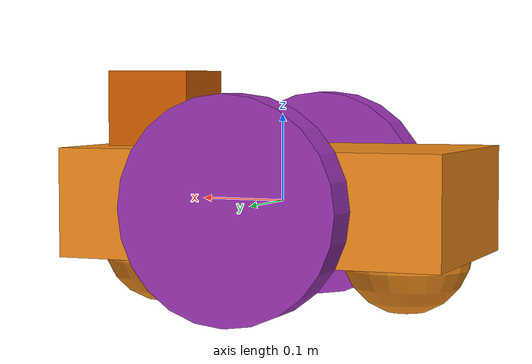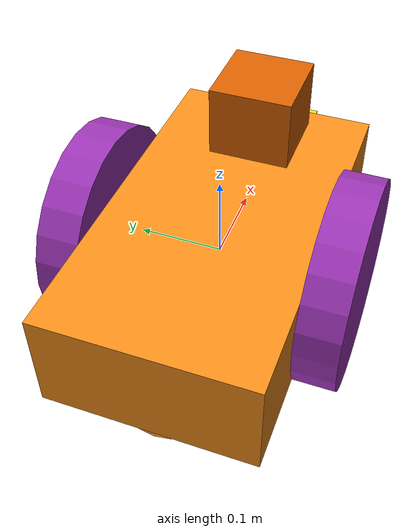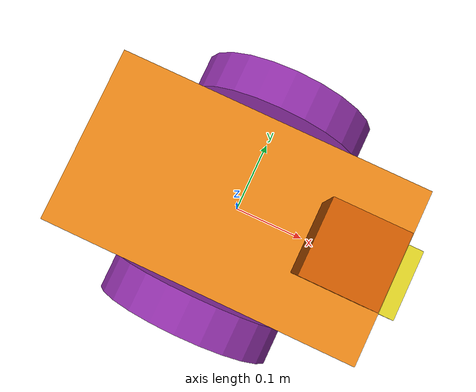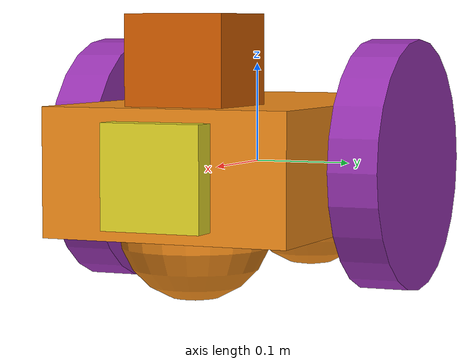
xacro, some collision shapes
<?xml version='1.0'?>

<robot name="my_robot" xmlns:xacro="http://www.ros.org/wiki/xacro">
<xacro:include filename="$(find my_robot)/urdf/my_robot.gazebo" />

  <link name="robot_footprint"></link>

  <joint name="robot_footprint_joint" type="fixed">
    <origin xyz="0 0 0" rpy="0 0 0" />
    <parent link="robot_footprint"/>
    <child link="chassis" />
  </joint>

  <link name='chassis'>
    <pose>0 0 0.1 0 0 0</pose>

    <inertial>
      <mass value="15.0"/>
      <origin xyz="0.0 0 0" rpy=" 0 0 0"/>
      <inertia
          ixx="0.1" ixy="0" ixz="0"
          iyy="0.1" iyz="0"
          izz="0.1"
      />
    </inertial>

    <collision name='collision'>
      <origin xyz="0 0 0" rpy=" 0 0 0"/>
      <geometry>
        <box size=".45 .25 .125"/>
      </geometry>
    </collision>

    <visual name='chassis_visual'>
      <origin xyz="0 0 0" rpy=" 0 0 0"/>
      <geometry>
        <box size=".45 .25 .125"/>
      </geometry>
    </visual>

    <collision name='back_caster_collision'>
      <origin xyz="-0.15 0 -0.05" rpy=" 0 0 0"/>
      <geometry>
        <sphere radius="0.07499"/>
      </geometry>
    </collision>

    <visual name='back_caster_visual'>
      <origin xyz="-0.15 0 -0.05" rpy=" 0 0 0"/>
      <geometry>
        <sphere radius="0.075"/>
      </geometry>
    </visual>

    <collision name='front_caster_collision'>
      <origin xyz="0.15 0 -0.05" rpy=" 0 0 0"/>
      <geometry>
        <sphere radius="0.07499"/>
      </geometry>
    </collision>

    <visual name='front_caster_visual'>
      <origin xyz="0.15 0 -0.05" rpy=" 0 0 0"/>
      <geometry>
        <sphere radius="0.075"/>
      </geometry>
    </visual>

  </link>

  <link name='left_wheel'>

    <inertial>
      <mass value="5"/>
      <origin xyz="0 0 0" rpy="0 1.5707 1.5707"/>
      <inertia
         ixx="0.1" ixy="0" ixz="0"
         iyy="0.1" iyz="0"
         izz="0.1"
      />
    </inertial>

    <collision>
       <origin xyz="0 0 0" rpy="0 1.5707 1.5707"/>
       <geometry>
         <cylinder radius="0.125" length="0.05"/>
       </geometry>
    </collision>

    <visual>
       <origin xyz="0 0 0" rpy="0 1.5707 1.5707"/>
       <geometry>
         <cylinder radius="0.125" length="0.05"/>
       </geometry>
    </visual>

  </link>

  <joint type="continuous" name="left_wheel_hinge">
    <origin xyz="0 0.15 0" rpy="0 0 0"/>
    <child link="left_wheel"/>
    <parent link="chassis"/>
    <axis xyz="0 1 0" rpy="0 0 0"/>
    <limit effort="10000" velocity="1000"/>
    <dynamics damping="1.0" friction="1.0"/>
  </joint>

  <link name='right_wheel'>

    <inertial>
      <mass value="5"/>
      <origin xyz="0 0 0" rpy="0 1.5707 1.5707"/>
      <inertia
         ixx="0.1" ixy="0" ixz="0"
         iyy="0.1" iyz="0"
         izz="0.1"
      />
    </inertial>

    <collision>
       <origin xyz="0 0 0" rpy="0 1.5707 1.5707"/>
       <geometry>
         <cylinder radius="0.125" length="0.05"/>
       </geometry>
    </collision>

    <visual>
       <origin xyz="0 0 0" rpy="0 1.5707 1.5707"/>
       <geometry>
         <cylinder radius="0.125" length="0.05"/>
       </geometry>
    </visual>

  </link>

  <joint type="continuous" name="right_wheel_hinge">
    <origin xyz="0 -0.15 0" rpy="0 0 0"/>
    <child link="right_wheel"/>
    <parent link="chassis"/>
    <axis xyz="0 1 0" rpy="0 0 0"/>
    <limit effort="10000" velocity="1000"/>
    <dynamics damping="1.0" friction="1.0"/>
  </joint>

  <link name='camera'>

    <inertial>
      <mass value="0.1"/>
      <origin xyz="0 0 0" rpy="0 0 0"/>
      <inertia
         ixx="1e-6" ixy="0" ixz="0"
         iyy="1e-6" iyz="0"
         izz="1e-6"
      />
      <box_inertia
         m="0.1" x="0.1" y="0.1" z="0.1"
      />
    </inertial>

    <collision>
       <origin xyz="0 0 0" rpy="0 0 0"/>
       <geometry>
         <box size="0.1 0.1 0.1"/>
       </geometry>
    </collision>

    <visual>
       <origin xyz="0 0 0" rpy="0 0 0"/>
       <geometry>
         <box size="0.1 0.1 0.1"/>
       </geometry>
    </visual>

  </link>

  <joint type="fixed" name="camera_joint">
    <origin xyz="0.2 0 0" rpy="0 0 0"/>
    <child link="camera"/>
    <parent link="chassis"/>
    <axis xyz="0 1 0" rpy="0 0 0"/>
    <limit effort="10000" velocity="1000"/>
    <dynamics damping="1.0" friction="1.0"/>
  </joint>

  <link name='hokuyo'>

    <inertial>
      <mass value="1e-5"/>
      <origin xyz="0 0 0" rpy="0 0 0"/>
      <inertia
         ixx="1e-6" ixy="0" ixz="0"
         iyy="1e-6" iyz="0"
         izz="1e-6"
      />
    </inertial>

    <collision>
       <origin xyz="0 0 0" rpy="0 0 0"/>
       <geometry>
         <box size="0.1 0.1 0.1"/>
       </geometry>
    </collision>

    <visual>
       <origin xyz="0 0 0" rpy="0 0 0"/>
       <geometry>
         <mesh filename="package://my_robot/meshes/hokuyo.dae"/>
       </geometry>
    </visual>

  </link>

  <joint type="fixed" name="hokuyo_joint">
    <origin xyz="0.15 0 0.1" rpy="0 0 0"/>
    <child link="hokuyo"/>
    <parent link="chassis"/>
    <axis xyz="0 1 0" rpy="0 0 0"/>
    <limit effort="10000" velocity="1000"/>
    <dynamics damping="1.0" friction="1.0"/>
  </joint>

  <joint name="camera_optical_joint" type="fixed">
    <origin xyz="0 0 0" rpy="-1.5707 0 -1.5707"/>
    <parent link="camera"/>
    <child link="camera_link_optical"/>
  </joint>

  <link name="camera_link_optical">
  </link>

  <gazebo reference="left_wheel">
    <material>Gazebo/Purple</material>
  </gazebo>

  <gazebo reference="right_wheel">
    <material>Gazebo/Purple</material>
  </gazebo>

  <gazebo reference="camera">
    <material>Gazebo/Yellow</material>
  </gazebo>

  <gazebo reference="chassis">
    <material>Gazebo/Orange</material>
  </gazebo>

</robot>
